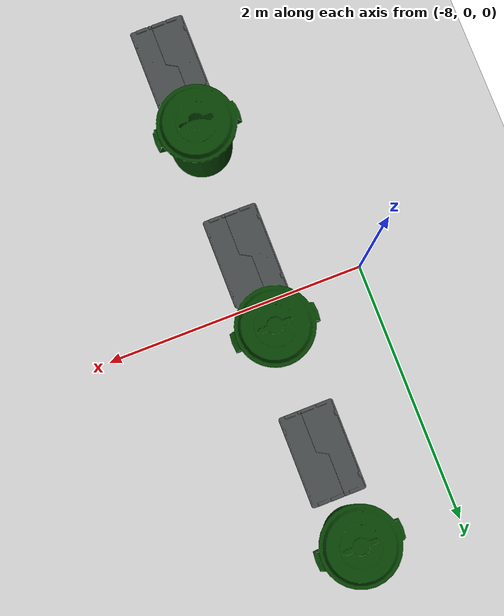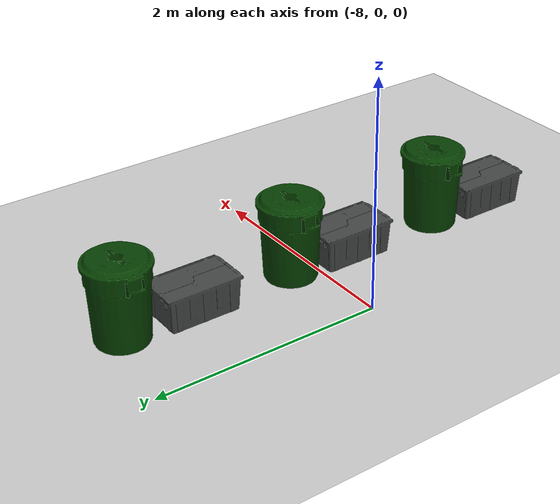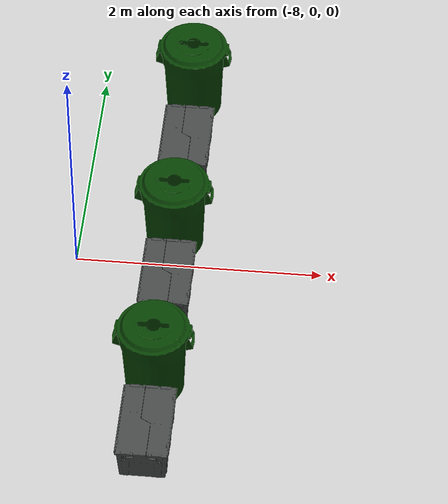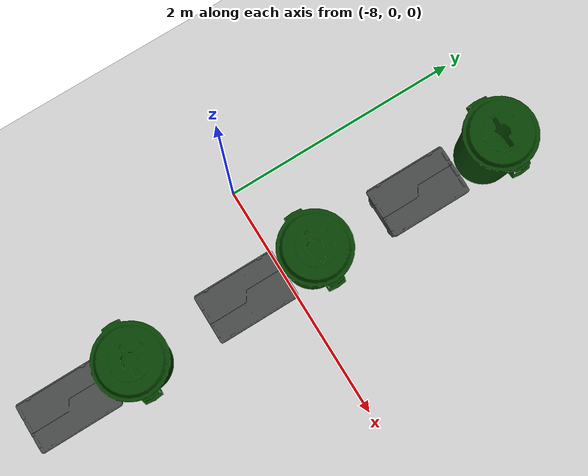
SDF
<sdf version="1.5">
 <world name="default">
  <include><uri>model://sun</uri></include>
  <include><uri>model://ground_plane</uri><pose>0 0 -0.05 0 0 0</pose></include>
  <include><name>tote0</name><uri>model://grey_tote</uri><pose>-7.22 -.342 .02 0 0 1.5707</pose></include>
  <include>
   <name>bin0</name>
   <uri>model://first_2015_trash_can</uri>
   <pose>-7.22 .25 .02 0 0 1.5707</pose>
  </include>
  <include><name>tote1</name><uri>model://grey_tote</uri><pose>-7.22 1.178 .02 0 0 1.5707</pose></include>
  <include>
   <name>bin1</name>
   <uri>model://first_2015_trash_can</uri>
   <pose>-7.22 1.83 .02 0 0 1.5707</pose>
  </include>
  <include><name>tote2</name><uri>model://grey_tote</uri><pose>-7.22 -1.862 .02 0 0 1.5707</pose></include>
  <include>
   <name>bin2</name>
   <uri>model://first_2015_trash_can</uri>
   <pose>-7.22 -1.27 .02 0 0 1.5707</pose>
  </include>
 </world>
</sdf>

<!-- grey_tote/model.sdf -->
<sdf version="1.5">
  <model name="grey_tote">
    <link name="link">
      <inertial>
        <pose>0 0 0.141549545 0 0 0</pose>
        <mass>3.53802</mass>
        <inertia>
          <ixx>0.068835836</ixx>
          <ixy>0</ixy>
          <ixz>0</ixz>
          <iyy>0.139596236</iyy>
          <iyz>0</iyz>
          <izz>0.155908748</izz>
        </inertia>
      </inertial>

      <collision name="lid">
        <pose>0 0 0.28958 0 0 0</pose>
        <geometry>
          <box>
            <size>0.67768 0.41298 0.01588</size>
          </box>
        </geometry>
      </collision>

      <collision name="lid_lip_1">
        <pose>0 0.20063 0.3048 0 0 0</pose>
        <geometry>
          <box>
            <size>0.65068 0.0105 0.0127</size>
          </box>
        </geometry>
      </collision>

      <collision name="lid_lip_2">
        <pose>0 -0.20063 0.3048 0 0 0</pose>
        <geometry>
          <box>
            <size>0.65068 0.0105 0.0127</size>
          </box>
        </geometry>
      </collision>

      <collision name="lid_lip_3">
        <pose>0.32585 0 0.3048 0 0 0</pose>
        <geometry>
          <box>
            <size>0.02602 0.31202 0.0127</size>
          </box>
        </geometry>
      </collision>

      <collision name="lid_lip_4">
        <pose>-0.32585 0 0.3048 0 0 0</pose>
        <geometry>
          <box>
            <size>0.02602 0.31202 0.0127</size>
          </box>
        </geometry>
      </collision>

      <collision name="side_wall_1">
        <pose>0 -0.18 0.141549545 0.0611474431 0 0</pose>
        <geometry>
          <box>
            <size>0.58404 0.02602 0.28309909</size>
          </box>
        </geometry>
      </collision>

      <collision name="side_wall_2">
        <pose>0 0.18 0.141549545 -0.0611474431 0 0</pose>
        <geometry>
          <box>
            <size>0.58404 0.02602 0.28309909</size>
          </box>
        </geometry>
      </collision>

      <collision name="side_wall_3">
        <pose>0.305 0 0.141549545 0 0.0611474431 0</pose>
        <geometry>
          <box>
            <size>0.02602 0.33046 0.28309909</size>
          </box>
        </geometry>
      </collision>

      <collision name="side_wall_4">
        <pose>-0.305 0 0.141549545 0 -0.0611474431 0</pose>
        <geometry>
          <box>
            <size>0.02602 0.33046 0.28309909</size>
          </box>
        </geometry>
      </collision>

      <collision name="bottom">
        <pose>0 0 0.01 0 0 0</pose>
        <geometry>
          <box>
            <size>0.58404 0.33046 0.02</size>
          </box>
        </geometry>
      </collision>

      <collision name="corner_1">
        <pose>0.30202 -0.175 0.141549545 0.0611474431 0.0611474431 0</pose>
        <geometry>
          <cylinder>
            <radius>0.01268</radius>
            <length>0.28309909</length>
          </cylinder>
        </geometry>
      </collision>

      <collision name="corner_2">
        <pose>-0.30202 -0.175 0.141549545 0.0611474431 -0.0611474431 0</pose>
        <geometry>
          <cylinder>
            <radius>0.01268</radius>
            <length>0.28309909</length>
          </cylinder>
        </geometry>
      </collision>

      <collision name="corner_3">
        <pose>-0.30202 0.175 0.141549545 -0.0611474431 -0.0611474431 0</pose>
        <geometry>
          <cylinder>
            <radius>0.01268</radius>
            <length>0.28309909</length>
          </cylinder>
        </geometry>
      </collision>

      <collision name="corner_4">
        <pose>0.30202 0.175 0.141549545 -0.0611474431 0.0611474431 0</pose>
        <geometry>
          <cylinder>
            <radius>0.01268</radius>
            <length>0.28309909</length>
          </cylinder>
        </geometry>
      </collision>

      <visual name="visual">
        <geometry>
          <mesh>
            <uri>model://grey_tote/meshes/tote.dae</uri>
          </mesh>
        </geometry>
      </visual>
    </link>
  </model>
</sdf>

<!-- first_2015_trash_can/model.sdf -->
<sdf version="1.5">
  <model name="first_2015_trash_can">
    <link name="link">
      <inertial>
        <pose>0 0 0.3683 0 0 0</pose>
        <mass>4.83076</mass>
        <inertia>
          <ixx>0.281534052</ixx>
          <ixy>0</ixy>
          <ixz>0</ixz>
          <iyy>0.281534052</iyy>
          <iyz>0</iyz>
          <izz>0.126222831</izz>
        </inertia>
      </inertial>

      <visual name="visual">
        <geometry>
          <mesh>
            <uri>model://first_2015_trash_can/meshes/trash_can.dae</uri>
          </mesh>
        </geometry>
      </visual>

      <collision name="collision">
        <geometry>
          <mesh>
            <uri>model://first_2015_trash_can/meshes/trash_can.dae</uri>
          </mesh>
        </geometry>
      </collision>
    </link>
  </model>
</sdf>
